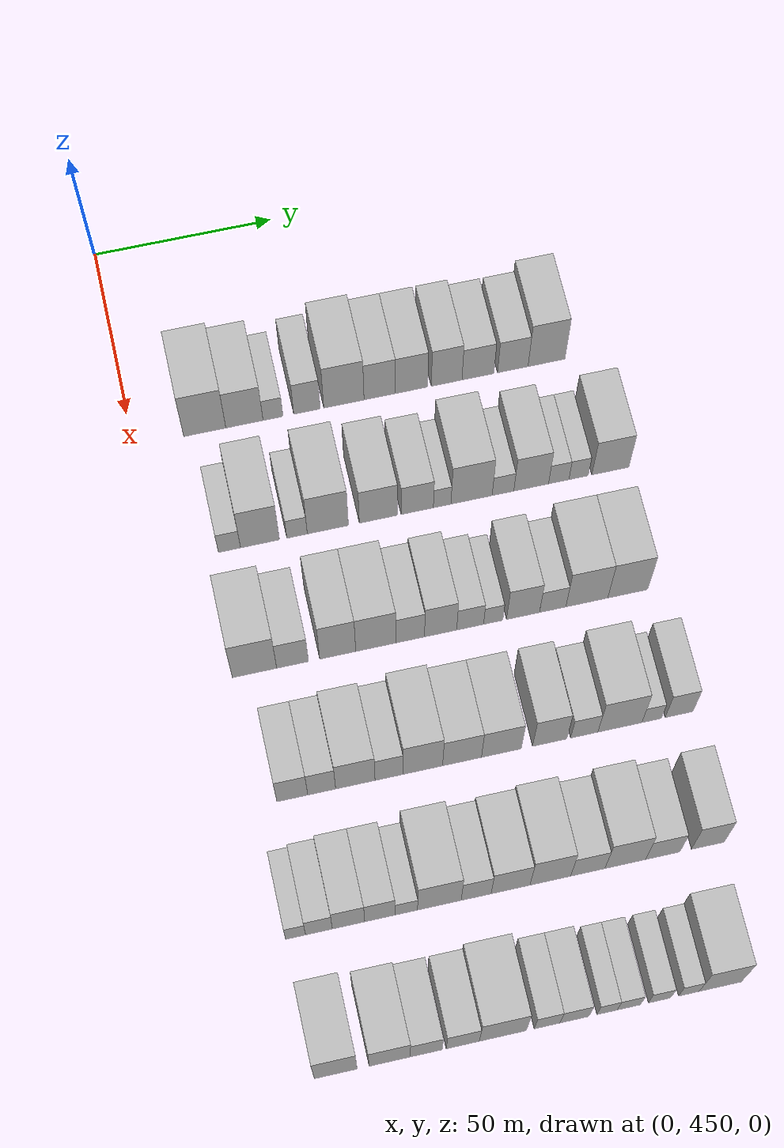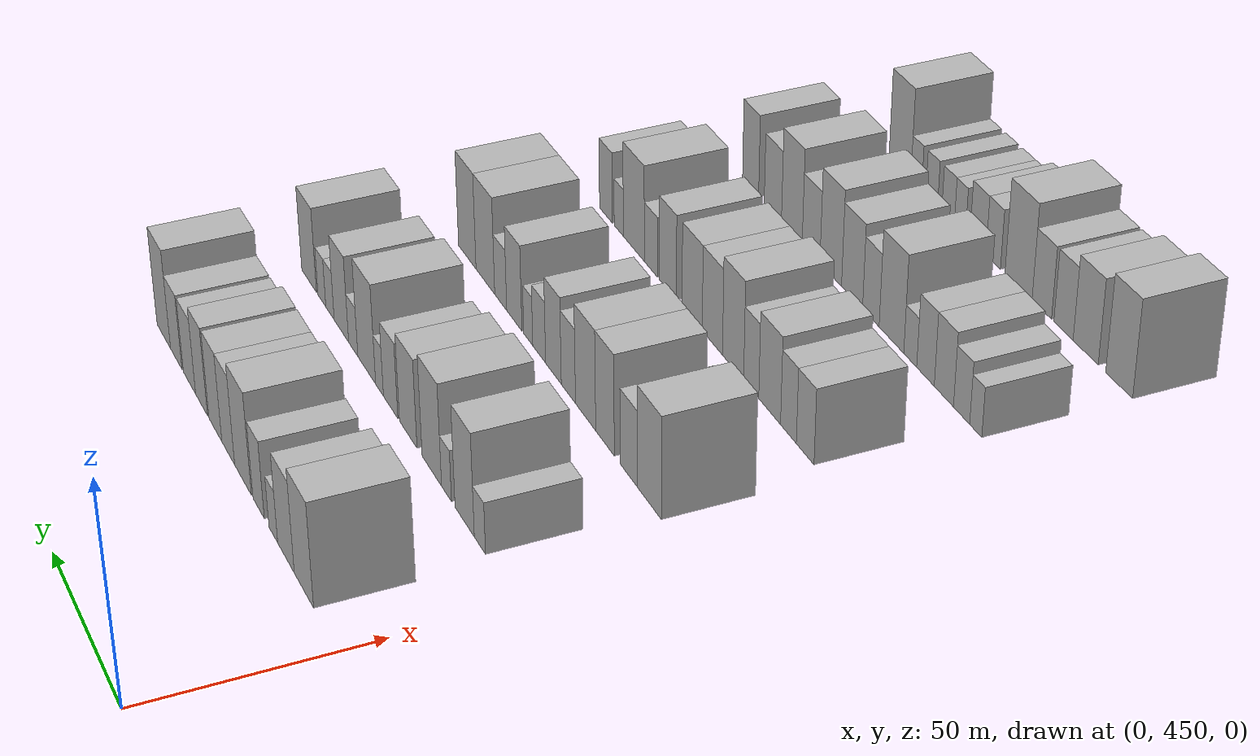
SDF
<sdf version="1.6">
 <world name="default">
  <model name="building_106">
   <static>1</static>
   <pose>50.0000 469.7100 0 0.000000 0.000000 0.000000</pose>
   <link name="link">
    <pose>0 0 12.00 0 0 0</pose>
    <collision name="collision"><geometry><box><size>20.0000 11.6014 24.0000</size></box></geometry></collision>
    <visual name="visual">
     <cast_shadows>0</cast_shadows>
     <geometry><box><size>20.0000 11.6014 24.0000</size></box></geometry>
     <material>
      <script>
       <uri>model://HANNAS_wall/materials/scripts</uri>
       <uri>model://HANNAS_wall/materials/textures</uri>
       <name>vrc/HANNAS_wall</name>
      </script>
     </material>
    </visual>
   </link>
  </model>
  <model name="building_107">
   <static>1</static>
   <pose>50.0000 480.6466 0 0.000000 0.000000 0.000000</pose>
   <link name="link">
    <pose>0 0 10.50 0 0 0</pose>
    <collision name="collision"><geometry><box><size>20.0000 10.2717 21.0000</size></box></geometry></collision>
    <visual name="visual">
     <cast_shadows>0</cast_shadows>
     <geometry><box><size>20.0000 10.2717 21.0000</size></box></geometry>
     <material>
      <script>
       <uri>model://HANNAS_wall/materials/scripts</uri>
       <uri>model://HANNAS_wall/materials/textures</uri>
       <name>vrc/HANNAS_wall</name>
      </script>
     </material>
    </visual>
   </link>
  </model>
  <model name="building_108">
   <static>1</static>
   <pose>50.0000 488.5362 0 0.000000 0.000000 0.000000</pose>
   <link name="link">
    <pose>0 0 6.00 0 0 0</pose>
    <collision name="collision"><geometry><box><size>20.0000 5.5075 12.0000</size></box></geometry></collision>
    <visual name="visual">
     <cast_shadows>0</cast_shadows>
     <geometry><box><size>20.0000 5.5075 12.0000</size></box></geometry>
     <material>
      <script>
       <uri>model://HANNAS_wall/materials/scripts</uri>
       <uri>model://HANNAS_wall/materials/textures</uri>
       <name>vrc/HANNAS_wall</name>
      </script>
     </material>
    </visual>
   </link>
  </model>
  <model name="building_109">
   <static>1</static>
   <pose>50.0000 497.9574 0 0.000000 0.000000 0.000000</pose>
   <link name="link">
    <pose>0 0 9.00 0 0 0</pose>
    <collision name="collision"><geometry><box><size>20.0000 7.3348 18.0000</size></box></geometry></collision>
    <visual name="visual">
     <cast_shadows>0</cast_shadows>
     <geometry><box><size>20.0000 7.3348 18.0000</size></box></geometry>
     <material>
      <script>
       <uri>model://HANNAS_wall/materials/scripts</uri>
       <uri>model://HANNAS_wall/materials/textures</uri>
       <name>vrc/HANNAS_wall</name>
      </script>
     </material>
    </visual>
   </link>
  </model>
  <model name="building_110">
   <static>1</static>
   <pose>50.0000 508.2278 0 0.000000 0.000000 0.000000</pose>
   <link name="link">
    <pose>0 0 12.00 0 0 0</pose>
    <collision name="collision"><geometry><box><size>20.0000 11.2060 24.0000</size></box></geometry></collision>
    <visual name="visual">
     <cast_shadows>0</cast_shadows>
     <geometry><box><size>20.0000 11.2060 24.0000</size></box></geometry>
     <material>
      <script>
       <uri>model://HANNAS_wall/materials/scripts</uri>
       <uri>model://HANNAS_wall/materials/textures</uri>
       <name>vrc/HANNAS_wall</name>
      </script>
     </material>
    </visual>
   </link>
  </model>
  <model name="building_111">
   <static>1</static>
   <pose>50.0000 518.2086 0 0.000000 0.000000 0.000000</pose>
   <link name="link">
    <pose>0 0 10.50 0 0 0</pose>
    <collision name="collision"><geometry><box><size>20.0000 8.7556 21.0000</size></box></geometry></collision>
    <visual name="visual">
     <cast_shadows>0</cast_shadows>
     <geometry><box><size>20.0000 8.7556 21.0000</size></box></geometry>
     <material>
      <script>
       <uri>model://HANNAS_wall/materials/scripts</uri>
       <uri>model://HANNAS_wall/materials/textures</uri>
       <name>vrc/HANNAS_wall</name>
      </script>
     </material>
    </visual>
   </link>
  </model>
  <model name="building_112">
   <static>1</static>
   <pose>50.0000 527.0960 0 0.000000 0.000000 0.000000</pose>
   <link name="link">
    <pose>0 0 10.50 0 0 0</pose>
    <collision name="collision"><geometry><box><size>20.0000 9.0192 21.0000</size></box></geometry></collision>
    <visual name="visual">
     <cast_shadows>0</cast_shadows>
     <geometry><box><size>20.0000 9.0192 21.0000</size></box></geometry>
     <material>
      <script>
       <uri>model://HANNAS_wall/materials/scripts</uri>
       <uri>model://HANNAS_wall/materials/textures</uri>
       <name>vrc/HANNAS_wall</name>
      </script>
     </material>
    </visual>
   </link>
  </model>
  <model name="building_113">
   <static>1</static>
   <pose>50.0000 536.9079 0 0.000000 0.000000 0.000000</pose>
   <link name="link">
    <pose>0 0 10.50 0 0 0</pose>
    <collision name="collision"><geometry><box><size>20.0000 8.6046 21.0000</size></box></geometry></collision>
    <visual name="visual">
     <cast_shadows>0</cast_shadows>
     <geometry><box><size>20.0000 8.6046 21.0000</size></box></geometry>
     <material>
      <script>
       <uri>model://HANNAS_wall/materials/scripts</uri>
       <uri>model://HANNAS_wall/materials/textures</uri>
       <name>vrc/HANNAS_wall</name>
      </script>
     </material>
    </visual>
   </link>
  </model>
  <model name="building_114">
   <static>1</static>
   <pose>50.0000 545.7012 0 0.000000 0.000000 0.000000</pose>
   <link name="link">
    <pose>0 0 9.00 0 0 0</pose>
    <collision name="collision"><geometry><box><size>20.0000 8.9820 18.0000</size></box></geometry></collision>
    <visual name="visual">
     <cast_shadows>0</cast_shadows>
     <geometry><box><size>20.0000 8.9820 18.0000</size></box></geometry>
     <material>
      <script>
       <uri>model://HANNAS_wall/materials/scripts</uri>
       <uri>model://HANNAS_wall/materials/textures</uri>
       <name>vrc/HANNAS_wall</name>
      </script>
     </material>
    </visual>
   </link>
  </model>
  <model name="building_115">
   <static>1</static>
   <pose>50.0000 555.4926 0 0.000000 0.000000 0.000000</pose>
   <link name="link">
    <pose>0 0 9.00 0 0 0</pose>
    <collision name="collision"><geometry><box><size>20.0000 8.6007 18.0000</size></box></geometry></collision>
    <visual name="visual">
     <cast_shadows>0</cast_shadows>
     <geometry><box><size>20.0000 8.6007 18.0000</size></box></geometry>
     <material>
      <script>
       <uri>model://HANNAS_wall/materials/scripts</uri>
       <uri>model://HANNAS_wall/materials/textures</uri>
       <name>vrc/HANNAS_wall</name>
      </script>
     </material>
    </visual>
   </link>
  </model>
  <model name="building_116">
   <static>1</static>
   <pose>50.0000 564.9871 0 0.000000 0.000000 0.000000</pose>
   <link name="link">
    <pose>0 0 12.00 0 0 0</pose>
    <collision name="collision"><geometry><box><size>20.0000 10.3883 24.0000</size></box></geometry></collision>
    <visual name="visual">
     <cast_shadows>0</cast_shadows>
     <geometry><box><size>20.0000 10.3883 24.0000</size></box></geometry>
     <material>
      <script>
       <uri>model://HANNAS_wall/materials/scripts</uri>
       <uri>model://HANNAS_wall/materials/textures</uri>
       <name>vrc/HANNAS_wall</name>
      </script>
     </material>
    </visual>
   </link>
  </model>
  <model name="building_226">
   <static>1</static>
   <pose>85.0000 469.6492 0 0.000000 0.000000 0.000000</pose>
   <link name="link">
    <pose>0 0 6.00 0 0 0</pose>
    <collision name="collision"><geometry><box><size>20.0000 5.9895 12.0000</size></box></geometry></collision>
    <visual name="visual">
     <cast_shadows>0</cast_shadows>
     <geometry><box><size>20.0000 5.9895 12.0000</size></box></geometry>
     <material>
      <script>
       <uri>model://HANNAS_wall/materials/scripts</uri>
       <uri>model://HANNAS_wall/materials/textures</uri>
       <name>vrc/HANNAS_wall</name>
      </script>
     </material>
    </visual>
   </link>
  </model>
  <model name="building_227">
   <static>1</static>
   <pose>85.0000 477.9140 0 0.000000 0.000000 0.000000</pose>
   <link name="link">
    <pose>0 0 12.00 0 0 0</pose>
    <collision name="collision"><geometry><box><size>20.0000 10.5402 24.0000</size></box></geometry></collision>
    <visual name="visual">
     <cast_shadows>0</cast_shadows>
     <geometry><box><size>20.0000 10.5402 24.0000</size></box></geometry>
     <material>
      <script>
       <uri>model://HANNAS_wall/materials/scripts</uri>
       <uri>model://HANNAS_wall/materials/textures</uri>
       <name>vrc/HANNAS_wall</name>
      </script>
     </material>
    </visual>
   </link>
  </model>
  <model name="building_228">
   <static>1</static>
   <pose>85.0000 487.9640 0 0.000000 0.000000 0.000000</pose>
   <link name="link">
    <pose>0 0 6.00 0 0 0</pose>
    <collision name="collision"><geometry><box><size>20.0000 5.5598 12.0000</size></box></geometry></collision>
    <visual name="visual">
     <cast_shadows>0</cast_shadows>
     <geometry><box><size>20.0000 5.5598 12.0000</size></box></geometry>
     <material>
      <script>
       <uri>model://HANNAS_wall/materials/scripts</uri>
       <uri>model://HANNAS_wall/materials/textures</uri>
       <name>vrc/HANNAS_wall</name>
      </script>
     </material>
    </visual>
   </link>
  </model>
  <model name="building_229">
   <static>1</static>
   <pose>85.0000 496.3328 0 0.000000 0.000000 0.000000</pose>
   <link name="link">
    <pose>0 0 12.00 0 0 0</pose>
    <collision name="collision"><geometry><box><size>20.0000 11.1779 24.0000</size></box></geometry></collision>
    <visual name="visual">
     <cast_shadows>0</cast_shadows>
     <geometry><box><size>20.0000 11.1779 24.0000</size></box></geometry>
     <material>
      <script>
       <uri>model://HANNAS_wall/materials/scripts</uri>
       <uri>model://HANNAS_wall/materials/textures</uri>
       <name>vrc/HANNAS_wall</name>
      </script>
     </material>
    </visual>
   </link>
  </model>
  <model name="building_230">
   <static>1</static>
   <pose>85.0000 510.1281 0 0.000000 0.000000 0.000000</pose>
   <link name="link">
    <pose>0 0 10.50 0 0 0</pose>
    <collision name="collision"><geometry><box><size>20.0000 10.4126 21.0000</size></box></geometry></collision>
    <visual name="visual">
     <cast_shadows>0</cast_shadows>
     <geometry><box><size>20.0000 10.4126 21.0000</size></box></geometry>
     <material>
      <script>
       <uri>model://HANNAS_wall/materials/scripts</uri>
       <uri>model://HANNAS_wall/materials/textures</uri>
       <name>vrc/HANNAS_wall</name>
      </script>
     </material>
    </visual>
   </link>
  </model>
  <model name="building_231">
   <static>1</static>
   <pose>85.0000 520.7489 0 0.000000 0.000000 0.000000</pose>
   <link name="link">
    <pose>0 0 9.00 0 0 0</pose>
    <collision name="collision"><geometry><box><size>20.0000 8.8291 18.0000</size></box></geometry></collision>
    <visual name="visual">
     <cast_shadows>0</cast_shadows>
     <geometry><box><size>20.0000 8.8291 18.0000</size></box></geometry>
     <material>
      <script>
       <uri>model://HANNAS_wall/materials/scripts</uri>
       <uri>model://HANNAS_wall/materials/textures</uri>
       <name>vrc/HANNAS_wall</name>
      </script>
     </material>
    </visual>
   </link>
  </model>
  <model name="building_232">
   <static>1</static>
   <pose>85.0000 527.5723 0 0.000000 0.000000 0.000000</pose>
   <link name="link">
    <pose>0 0 6.00 0 0 0</pose>
    <collision name="collision"><geometry><box><size>20.0000 4.8176 12.0000</size></box></geometry></collision>
    <visual name="visual">
     <cast_shadows>0</cast_shadows>
     <geometry><box><size>20.0000 4.8176 12.0000</size></box></geometry>
     <material>
      <script>
       <uri>model://HANNAS_wall/materials/scripts</uri>
       <uri>model://HANNAS_wall/materials/textures</uri>
       <name>vrc/HANNAS_wall</name>
      </script>
     </material>
    </visual>
   </link>
  </model>
  <model name="building_233">
   <static>1</static>
   <pose>85.0000 535.6492 0 0.000000 0.000000 0.000000</pose>
   <link name="link">
    <pose>0 0 12.00 0 0 0</pose>
    <collision name="collision"><geometry><box><size>20.0000 11.3363 24.0000</size></box></geometry></collision>
    <visual name="visual">
     <cast_shadows>0</cast_shadows>
     <geometry><box><size>20.0000 11.3363 24.0000</size></box></geometry>
     <material>
      <script>
       <uri>model://HANNAS_wall/materials/scripts</uri>
       <uri>model://HANNAS_wall/materials/textures</uri>
       <name>vrc/HANNAS_wall</name>
      </script>
     </material>
    </visual>
   </link>
  </model>
  <model name="building_234">
   <static>1</static>
   <pose>85.0000 544.3061 0 0.000000 0.000000 0.000000</pose>
   <link name="link">
    <pose>0 0 6.00 0 0 0</pose>
    <collision name="collision"><geometry><box><size>20.0000 5.9774 12.0000</size></box></geometry></collision>
    <visual name="visual">
     <cast_shadows>0</cast_shadows>
     <geometry><box><size>20.0000 5.9774 12.0000</size></box></geometry>
     <material>
      <script>
       <uri>model://HANNAS_wall/materials/scripts</uri>
       <uri>model://HANNAS_wall/materials/textures</uri>
       <name>vrc/HANNAS_wall</name>
      </script>
     </material>
    </visual>
   </link>
  </model>
  <model name="building_235">
   <static>1</static>
   <pose>85.0000 552.0830 0 0.000000 0.000000 0.000000</pose>
   <link name="link">
    <pose>0 0 10.50 0 0 0</pose>
    <collision name="collision"><geometry><box><size>20.0000 9.5765 21.0000</size></box></geometry></collision>
    <visual name="visual">
     <cast_shadows>0</cast_shadows>
     <geometry><box><size>20.0000 9.5765 21.0000</size></box></geometry>
     <material>
      <script>
       <uri>model://HANNAS_wall/materials/scripts</uri>
       <uri>model://HANNAS_wall/materials/textures</uri>
       <name>vrc/HANNAS_wall</name>
      </script>
     </material>
    </visual>
   </link>
  </model>
  <model name="building_236">
   <static>1</static>
   <pose>85.0000 559.6921 0 0.000000 0.000000 0.000000</pose>
   <link name="link">
    <pose>0 0 6.00 0 0 0</pose>
    <collision name="collision"><geometry><box><size>20.0000 5.6416 12.0000</size></box></geometry></collision>
    <visual name="visual">
     <cast_shadows>0</cast_shadows>
     <geometry><box><size>20.0000 5.6416 12.0000</size></box></geometry>
     <material>
      <script>
       <uri>model://HANNAS_wall/materials/scripts</uri>
       <uri>model://HANNAS_wall/materials/textures</uri>
       <name>vrc/HANNAS_wall</name>
      </script>
     </material>
    </visual>
   </link>
  </model>
  <model name="building_237">
   <static>1</static>
   <pose>85.0000 565.1885 0 0.000000 0.000000 0.000000</pose>
   <link name="link">
    <pose>0 0 6.00 0 0 0</pose>
    <collision name="collision"><geometry><box><size>20.0000 5.3513 12.0000</size></box></geometry></collision>
    <visual name="visual">
     <cast_shadows>0</cast_shadows>
     <geometry><box><size>20.0000 5.3513 12.0000</size></box></geometry>
     <material>
      <script>
       <uri>model://HANNAS_wall/materials/scripts</uri>
       <uri>model://HANNAS_wall/materials/textures</uri>
       <name>vrc/HANNAS_wall</name>
      </script>
     </material>
    </visual>
   </link>
  </model>
  <model name="building_238">
   <static>1</static>
   <pose>85.0000 574.0021 0 0.000000 0.000000 0.000000</pose>
   <link name="link">
    <pose>0 0 10.50 0 0 0</pose>
    <collision name="collision"><geometry><box><size>20.0000 10.2759 21.0000</size></box></geometry></collision>
    <visual name="visual">
     <cast_shadows>0</cast_shadows>
     <geometry><box><size>20.0000 10.2759 21.0000</size></box></geometry>
     <material>
      <script>
       <uri>model://HANNAS_wall/materials/scripts</uri>
       <uri>model://HANNAS_wall/materials/textures</uri>
       <name>vrc/HANNAS_wall</name>
      </script>
     </material>
    </visual>
   </link>
  </model>
  <model name="building_348">
   <static>1</static>
   <pose>120.0000 469.4307 0 0.000000 0.000000 0.000000</pose>
   <link name="link">
    <pose>0 0 12.00 0 0 0</pose>
    <collision name="collision"><geometry><box><size>20.0000 11.7761 24.0000</size></box></geometry></collision>
    <visual name="visual">
     <cast_shadows>0</cast_shadows>
     <geometry><box><size>20.0000 11.7761 24.0000</size></box></geometry>
     <material>
      <script>
       <uri>model://HANNAS_wall/materials/scripts</uri>
       <uri>model://HANNAS_wall/materials/textures</uri>
       <name>vrc/HANNAS_wall</name>
      </script>
     </material>
    </visual>
   </link>
  </model>
  <model name="building_349">
   <static>1</static>
   <pose>120.0000 479.5375 0 0.000000 0.000000 0.000000</pose>
   <link name="link">
    <pose>0 0 9.00 0 0 0</pose>
    <collision name="collision"><geometry><box><size>20.0000 8.4376 18.0000</size></box></geometry></collision>
    <visual name="visual">
     <cast_shadows>0</cast_shadows>
     <geometry><box><size>20.0000 8.4376 18.0000</size></box></geometry>
     <material>
      <script>
       <uri>model://HANNAS_wall/materials/scripts</uri>
       <uri>model://HANNAS_wall/materials/textures</uri>
       <name>vrc/HANNAS_wall</name>
      </script>
     </material>
    </visual>
   </link>
  </model>
  <model name="building_350">
   <static>1</static>
   <pose>120.0000 491.5591 0 0.000000 0.000000 0.000000</pose>
   <link name="link">
    <pose>0 0 12.00 0 0 0</pose>
    <collision name="collision"><geometry><box><size>20.0000 9.6054 24.0000</size></box></geometry></collision>
    <visual name="visual">
     <cast_shadows>0</cast_shadows>
     <geometry><box><size>20.0000 9.6054 24.0000</size></box></geometry>
     <material>
      <script>
       <uri>model://HANNAS_wall/materials/scripts</uri>
       <uri>model://HANNAS_wall/materials/textures</uri>
       <name>vrc/HANNAS_wall</name>
      </script>
     </material>
    </visual>
   </link>
  </model>
  <model name="building_351">
   <static>1</static>
   <pose>120.0000 501.7022 0 0.000000 0.000000 0.000000</pose>
   <link name="link">
    <pose>0 0 12.00 0 0 0</pose>
    <collision name="collision"><geometry><box><size>20.0000 10.6809 24.0000</size></box></geometry></collision>
    <visual name="visual">
     <cast_shadows>0</cast_shadows>
     <geometry><box><size>20.0000 10.6809 24.0000</size></box></geometry>
     <material>
      <script>
       <uri>model://HANNAS_wall/materials/scripts</uri>
       <uri>model://HANNAS_wall/materials/textures</uri>
       <name>vrc/HANNAS_wall</name>
      </script>
     </material>
    </visual>
   </link>
  </model>
  <model name="building_352">
   <static>1</static>
   <pose>120.0000 510.8891 0 0.000000 0.000000 0.000000</pose>
   <link name="link">
    <pose>0 0 9.00 0 0 0</pose>
    <collision name="collision"><geometry><box><size>20.0000 7.6928 18.0000</size></box></geometry></collision>
    <visual name="visual">
     <cast_shadows>0</cast_shadows>
     <geometry><box><size>20.0000 7.6928 18.0000</size></box></geometry>
     <material>
      <script>
       <uri>model://HANNAS_wall/materials/scripts</uri>
       <uri>model://HANNAS_wall/materials/textures</uri>
       <name>vrc/HANNAS_wall</name>
      </script>
     </material>
    </visual>
   </link>
  </model>
  <model name="building_353">
   <static>1</static>
   <pose>120.0000 519.0632 0 0.000000 0.000000 0.000000</pose>
   <link name="link">
    <pose>0 0 10.50 0 0 0</pose>
    <collision name="collision"><geometry><box><size>20.0000 8.6554 21.0000</size></box></geometry></collision>
    <visual name="visual">
     <cast_shadows>0</cast_shadows>
     <geometry><box><size>20.0000 8.6554 21.0000</size></box></geometry>
     <material>
      <script>
       <uri>model://HANNAS_wall/materials/scripts</uri>
       <uri>model://HANNAS_wall/materials/textures</uri>
       <name>vrc/HANNAS_wall</name>
      </script>
     </material>
    </visual>
   </link>
  </model>
  <model name="building_354">
   <static>1</static>
   <pose>120.0000 527.0160 0 0.000000 0.000000 0.000000</pose>
   <link name="link">
    <pose>0 0 7.50 0 0 0</pose>
    <collision name="collision"><geometry><box><size>20.0000 7.2502 15.0000</size></box></geometry></collision>
    <visual name="visual">
     <cast_shadows>0</cast_shadows>
     <geometry><box><size>20.0000 7.2502 15.0000</size></box></geometry>
     <material>
      <script>
       <uri>model://HANNAS_wall/materials/scripts</uri>
       <uri>model://HANNAS_wall/materials/textures</uri>
       <name>vrc/HANNAS_wall</name>
      </script>
     </material>
    </visual>
   </link>
  </model>
  <model name="building_355">
   <static>1</static>
   <pose>120.0000 533.2361 0 0.000000 0.000000 0.000000</pose>
   <link name="link">
    <pose>0 0 6.00 0 0 0</pose>
    <collision name="collision"><geometry><box><size>20.0000 5.1900 12.0000</size></box></geometry></collision>
    <visual name="visual">
     <cast_shadows>0</cast_shadows>
     <geometry><box><size>20.0000 5.1900 12.0000</size></box></geometry>
     <material>
      <script>
       <uri>model://HANNAS_wall/materials/scripts</uri>
       <uri>model://HANNAS_wall/materials/textures</uri>
       <name>vrc/HANNAS_wall</name>
      </script>
     </material>
    </visual>
   </link>
  </model>
  <model name="building_356">
   <static>1</static>
   <pose>120.0000 541.2809 0 0.000000 0.000000 0.000000</pose>
   <link name="link">
    <pose>0 0 10.50 0 0 0</pose>
    <collision name="collision"><geometry><box><size>20.0000 8.8995 21.0000</size></box></geometry></collision>
    <visual name="visual">
     <cast_shadows>0</cast_shadows>
     <geometry><box><size>20.0000 8.8995 21.0000</size></box></geometry>
     <material>
      <script>
       <uri>model://HANNAS_wall/materials/scripts</uri>
       <uri>model://HANNAS_wall/materials/textures</uri>
       <name>vrc/HANNAS_wall</name>
      </script>
     </material>
    </visual>
   </link>
  </model>
  <model name="building_357">
   <static>1</static>
   <pose>120.0000 549.3028 0 0.000000 0.000000 0.000000</pose>
   <link name="link">
    <pose>0 0 7.50 0 0 0</pose>
    <collision name="collision"><geometry><box><size>20.0000 7.1442 15.0000</size></box></geometry></collision>
    <visual name="visual">
     <cast_shadows>0</cast_shadows>
     <geometry><box><size>20.0000 7.1442 15.0000</size></box></geometry>
     <material>
      <script>
       <uri>model://HANNAS_wall/materials/scripts</uri>
       <uri>model://HANNAS_wall/materials/textures</uri>
       <name>vrc/HANNAS_wall</name>
      </script>
     </material>
    </visual>
   </link>
  </model>
  <model name="building_358">
   <static>1</static>
   <pose>120.0000 558.5665 0 0.000000 0.000000 0.000000</pose>
   <link name="link">
    <pose>0 0 12.00 0 0 0</pose>
    <collision name="collision"><geometry><box><size>20.0000 11.3832 24.0000</size></box></geometry></collision>
    <visual name="visual">
     <cast_shadows>0</cast_shadows>
     <geometry><box><size>20.0000 11.3832 24.0000</size></box></geometry>
     <material>
      <script>
       <uri>model://HANNAS_wall/materials/scripts</uri>
       <uri>model://HANNAS_wall/materials/textures</uri>
       <name>vrc/HANNAS_wall</name>
      </script>
     </material>
    </visual>
   </link>
  </model>
  <model name="building_359">
   <static>1</static>
   <pose>120.0000 569.6889 0 0.000000 0.000000 0.000000</pose>
   <link name="link">
    <pose>0 0 12.00 0 0 0</pose>
    <collision name="collision"><geometry><box><size>20.0000 10.8616 24.0000</size></box></geometry></collision>
    <visual name="visual">
     <cast_shadows>0</cast_shadows>
     <geometry><box><size>20.0000 10.8616 24.0000</size></box></geometry>
     <material>
      <script>
       <uri>model://HANNAS_wall/materials/scripts</uri>
       <uri>model://HANNAS_wall/materials/textures</uri>
       <name>vrc/HANNAS_wall</name>
      </script>
     </material>
    </visual>
   </link>
  </model>
  <model name="building_472">
   <static>1</static>
   <pose>155.0000 472.2458 0 0.000000 0.000000 0.000000</pose>
   <link name="link">
    <pose>0 0 9.00 0 0 0</pose>
    <collision name="collision"><geometry><box><size>20.0000 8.0115 18.0000</size></box></geometry></collision>
    <visual name="visual">
     <cast_shadows>0</cast_shadows>
     <geometry><box><size>20.0000 8.0115 18.0000</size></box></geometry>
     <material>
      <script>
       <uri>model://HANNAS_wall/materials/scripts</uri>
       <uri>model://HANNAS_wall/materials/textures</uri>
       <name>vrc/HANNAS_wall</name>
      </script>
     </material>
    </visual>
   </link>
  </model>
  <model name="building_473">
   <static>1</static>
   <pose>155.0000 479.8891 0 0.000000 0.000000 0.000000</pose>
   <link name="link">
    <pose>0 0 9.00 0 0 0</pose>
    <collision name="collision"><geometry><box><size>20.0000 7.2750 18.0000</size></box></geometry></collision>
    <visual name="visual">
     <cast_shadows>0</cast_shadows>
     <geometry><box><size>20.0000 7.2750 18.0000</size></box></geometry>
     <material>
      <script>
       <uri>model://HANNAS_wall/materials/scripts</uri>
       <uri>model://HANNAS_wall/materials/textures</uri>
       <name>vrc/HANNAS_wall</name>
      </script>
     </material>
    </visual>
   </link>
  </model>
  <model name="building_474">
   <static>1</static>
   <pose>155.0000 488.6680 0 0.000000 0.000000 0.000000</pose>
   <link name="link">
    <pose>0 0 10.50 0 0 0</pose>
    <collision name="collision"><geometry><box><size>20.0000 10.2828 21.0000</size></box></geometry></collision>
    <visual name="visual">
     <cast_shadows>0</cast_shadows>
     <geometry><box><size>20.0000 10.2828 21.0000</size></box></geometry>
     <material>
      <script>
       <uri>model://HANNAS_wall/materials/scripts</uri>
       <uri>model://HANNAS_wall/materials/textures</uri>
       <name>vrc/HANNAS_wall</name>
      </script>
     </material>
    </visual>
   </link>
  </model>
  <model name="building_475">
   <static>1</static>
   <pose>155.0000 497.4540 0 0.000000 0.000000 0.000000</pose>
   <link name="link">
    <pose>0 0 9.00 0 0 0</pose>
    <collision name="collision"><geometry><box><size>20.0000 7.2894 18.0000</size></box></geometry></collision>
    <visual name="visual">
     <cast_shadows>0</cast_shadows>
     <geometry><box><size>20.0000 7.2894 18.0000</size></box></geometry>
     <material>
      <script>
       <uri>model://HANNAS_wall/materials/scripts</uri>
       <uri>model://HANNAS_wall/materials/textures</uri>
       <name>vrc/HANNAS_wall</name>
      </script>
     </material>
    </visual>
   </link>
  </model>
  <model name="building_476">
   <static>1</static>
   <pose>155.0000 506.3157 0 0.000000 0.000000 0.000000</pose>
   <link name="link">
    <pose>0 0 12.00 0 0 0</pose>
    <collision name="collision"><geometry><box><size>20.0000 10.4339 24.0000</size></box></geometry></collision>
    <visual name="visual">
     <cast_shadows>0</cast_shadows>
     <geometry><box><size>20.0000 10.4339 24.0000</size></box></geometry>
     <material>
      <script>
       <uri>model://HANNAS_wall/materials/scripts</uri>
       <uri>model://HANNAS_wall/materials/textures</uri>
       <name>vrc/HANNAS_wall</name>
      </script>
     </material>
    </visual>
   </link>
  </model>
  <model name="building_477">
   <static>1</static>
   <pose>155.0000 516.6469 0 0.000000 0.000000 0.000000</pose>
   <link name="link">
    <pose>0 0 10.50 0 0 0</pose>
    <collision name="collision"><geometry><box><size>20.0000 10.2285 21.0000</size></box></geometry></collision>
    <visual name="visual">
     <cast_shadows>0</cast_shadows>
     <geometry><box><size>20.0000 10.2285 21.0000</size></box></geometry>
     <material>
      <script>
       <uri>model://HANNAS_wall/materials/scripts</uri>
       <uri>model://HANNAS_wall/materials/textures</uri>
       <name>vrc/HANNAS_wall</name>
      </script>
     </material>
    </visual>
   </link>
  </model>
  <model name="building_478">
   <static>1</static>
   <pose>155.0000 527.0110 0 0.000000 0.000000 0.000000</pose>
   <link name="link">
    <pose>0 0 10.50 0 0 0</pose>
    <collision name="collision"><geometry><box><size>20.0000 10.4998 21.0000</size></box></geometry></collision>
    <visual name="visual">
     <cast_shadows>0</cast_shadows>
     <geometry><box><size>20.0000 10.4998 21.0000</size></box></geometry>
     <material>
      <script>
       <uri>model://HANNAS_wall/materials/scripts</uri>
       <uri>model://HANNAS_wall/materials/textures</uri>
       <name>vrc/HANNAS_wall</name>
      </script>
     </material>
    </visual>
   </link>
  </model>
  <model name="building_479">
   <static>1</static>
   <pose>155.0000 539.7987 0 0.000000 0.000000 0.000000</pose>
   <link name="link">
    <pose>0 0 10.50 0 0 0</pose>
    <collision name="collision"><geometry><box><size>20.0000 9.0755 21.0000</size></box></geometry></collision>
    <visual name="visual">
     <cast_shadows>0</cast_shadows>
     <geometry><box><size>20.0000 9.0755 21.0000</size></box></geometry>
     <material>
      <script>
       <uri>model://HANNAS_wall/materials/scripts</uri>
       <uri>model://HANNAS_wall/materials/textures</uri>
       <name>vrc/HANNAS_wall</name>
      </script>
     </material>
    </visual>
   </link>
  </model>
  <model name="building_480">
   <static>1</static>
   <pose>155.0000 548.9595 0 0.000000 0.000000 0.000000</pose>
   <link name="link">
    <pose>0 0 7.50 0 0 0</pose>
    <collision name="collision"><geometry><box><size>20.0000 7.2463 15.0000</size></box></geometry></collision>
    <visual name="visual">
     <cast_shadows>0</cast_shadows>
     <geometry><box><size>20.0000 7.2463 15.0000</size></box></geometry>
     <material>
      <script>
       <uri>model://HANNAS_wall/materials/scripts</uri>
       <uri>model://HANNAS_wall/materials/textures</uri>
       <name>vrc/HANNAS_wall</name>
      </script>
     </material>
    </visual>
   </link>
  </model>
  <model name="building_481">
   <static>1</static>
   <pose>155.0000 558.4377 0 0.000000 0.000000 0.000000</pose>
   <link name="link">
    <pose>0 0 12.00 0 0 0</pose>
    <collision name="collision"><geometry><box><size>20.0000 11.7102 24.0000</size></box></geometry></collision>
    <visual name="visual">
     <cast_shadows>0</cast_shadows>
     <geometry><box><size>20.0000 11.7102 24.0000</size></box></geometry>
     <material>
      <script>
       <uri>model://HANNAS_wall/materials/scripts</uri>
       <uri>model://HANNAS_wall/materials/textures</uri>
       <name>vrc/HANNAS_wall</name>
      </script>
     </material>
    </visual>
   </link>
  </model>
  <model name="building_482">
   <static>1</static>
   <pose>155.0000 566.9035 0 0.000000 0.000000 0.000000</pose>
   <link name="link">
    <pose>0 0 6.00 0 0 0</pose>
    <collision name="collision"><geometry><box><size>20.0000 5.2215 12.0000</size></box></geometry></collision>
    <visual name="visual">
     <cast_shadows>0</cast_shadows>
     <geometry><box><size>20.0000 5.2215 12.0000</size></box></geometry>
     <material>
      <script>
       <uri>model://HANNAS_wall/materials/scripts</uri>
       <uri>model://HANNAS_wall/materials/textures</uri>
       <name>vrc/HANNAS_wall</name>
      </script>
     </material>
    </visual>
   </link>
  </model>
  <model name="building_483">
   <static>1</static>
   <pose>155.0000 574.2323 0 0.000000 0.000000 0.000000</pose>
   <link name="link">
    <pose>0 0 9.00 0 0 0</pose>
    <collision name="collision"><geometry><box><size>20.0000 7.4361 18.0000</size></box></geometry></collision>
    <visual name="visual">
     <cast_shadows>0</cast_shadows>
     <geometry><box><size>20.0000 7.4361 18.0000</size></box></geometry>
     <material>
      <script>
       <uri>model://HANNAS_wall/materials/scripts</uri>
       <uri>model://HANNAS_wall/materials/textures</uri>
       <name>vrc/HANNAS_wall</name>
      </script>
     </material>
    </visual>
   </link>
  </model>
  <model name="building_599">
   <static>1</static>
   <pose>190.0000 465.8718 0 0.000000 0.000000 0.000000</pose>
   <link name="link">
    <pose>0 0 6.00 0 0 0</pose>
    <collision name="collision"><geometry><box><size>20.0000 5.0591 12.0000</size></box></geometry></collision>
    <visual name="visual">
     <cast_shadows>0</cast_shadows>
     <geometry><box><size>20.0000 5.0591 12.0000</size></box></geometry>
     <material>
      <script>
       <uri>model://HANNAS_wall/materials/scripts</uri>
       <uri>model://HANNAS_wall/materials/textures</uri>
       <name>vrc/HANNAS_wall</name>
      </script>
     </material>
    </visual>
   </link>
  </model>
  <model name="building_600">
   <static>1</static>
   <pose>190.0000 471.8143 0 0.000000 0.000000 0.000000</pose>
   <link name="link">
    <pose>0 0 7.50 0 0 0</pose>
    <collision name="collision"><geometry><box><size>20.0000 6.8260 15.0000</size></box></geometry></collision>
    <visual name="visual">
     <cast_shadows>0</cast_shadows>
     <geometry><box><size>20.0000 6.8260 15.0000</size></box></geometry>
     <material>
      <script>
       <uri>model://HANNAS_wall/materials/scripts</uri>
       <uri>model://HANNAS_wall/materials/textures</uri>
       <name>vrc/HANNAS_wall</name>
      </script>
     </material>
    </visual>
   </link>
  </model>
  <model name="building_601">
   <static>1</static>
   <pose>190.0000 479.3616 0 0.000000 0.000000 0.000000</pose>
   <link name="link">
    <pose>0 0 9.00 0 0 0</pose>
    <collision name="collision"><geometry><box><size>20.0000 8.2686 18.0000</size></box></geometry></collision>
    <visual name="visual">
     <cast_shadows>0</cast_shadows>
     <geometry><box><size>20.0000 8.2686 18.0000</size></box></geometry>
     <material>
      <script>
       <uri>model://HANNAS_wall/materials/scripts</uri>
       <uri>model://HANNAS_wall/materials/textures</uri>
       <name>vrc/HANNAS_wall</name>
      </script>
     </material>
    </visual>
   </link>
  </model>
  <model name="building_602">
   <static>1</static>
   <pose>190.0000 487.3592 0 0.000000 0.000000 0.000000</pose>
   <link name="link">
    <pose>0 0 9.00 0 0 0</pose>
    <collision name="collision"><geometry><box><size>20.0000 7.7267 18.0000</size></box></geometry></collision>
    <visual name="visual">
     <cast_shadows>0</cast_shadows>
     <geometry><box><size>20.0000 7.7267 18.0000</size></box></geometry>
     <material>
      <script>
       <uri>model://HANNAS_wall/materials/scripts</uri>
       <uri>model://HANNAS_wall/materials/textures</uri>
       <name>vrc/HANNAS_wall</name>
      </script>
     </material>
    </visual>
   </link>
  </model>
  <model name="building_603">
   <static>1</static>
   <pose>190.0000 494.1106 0 0.000000 0.000000 0.000000</pose>
   <link name="link">
    <pose>0 0 6.00 0 0 0</pose>
    <collision name="collision"><geometry><box><size>20.0000 5.7759 12.0000</size></box></geometry></collision>
    <visual name="visual">
     <cast_shadows>0</cast_shadows>
     <geometry><box><size>20.0000 5.7759 12.0000</size></box></geometry>
     <material>
      <script>
       <uri>model://HANNAS_wall/materials/scripts</uri>
       <uri>model://HANNAS_wall/materials/textures</uri>
       <name>vrc/HANNAS_wall</name>
      </script>
     </material>
    </visual>
   </link>
  </model>
  <model name="building_604">
   <static>1</static>
   <pose>190.0000 502.6145 0 0.000000 0.000000 0.000000</pose>
   <link name="link">
    <pose>0 0 12.00 0 0 0</pose>
    <collision name="collision"><geometry><box><size>20.0000 11.2320 24.0000</size></box></geometry></collision>
    <visual name="visual">
     <cast_shadows>0</cast_shadows>
     <geometry><box><size>20.0000 11.2320 24.0000</size></box></geometry>
     <material>
      <script>
       <uri>model://HANNAS_wall/materials/scripts</uri>
       <uri>model://HANNAS_wall/materials/textures</uri>
       <name>vrc/HANNAS_wall</name>
      </script>
     </material>
    </visual>
   </link>
  </model>
  <model name="building_605">
   <static>1</static>
   <pose>190.0000 512.0905 0 0.000000 0.000000 0.000000</pose>
   <link name="link">
    <pose>0 0 9.00 0 0 0</pose>
    <collision name="collision"><geometry><box><size>20.0000 7.7200 18.0000</size></box></geometry></collision>
    <visual name="visual">
     <cast_shadows>0</cast_shadows>
     <geometry><box><size>20.0000 7.7200 18.0000</size></box></geometry>
     <material>
      <script>
       <uri>model://HANNAS_wall/materials/scripts</uri>
       <uri>model://HANNAS_wall/materials/textures</uri>
       <name>vrc/HANNAS_wall</name>
      </script>
     </material>
    </visual>
   </link>
  </model>
  <model name="building_606">
   <static>1</static>
   <pose>190.0000 520.9630 0 0.000000 0.000000 0.000000</pose>
   <link name="link">
    <pose>0 0 10.50 0 0 0</pose>
    <collision name="collision"><geometry><box><size>20.0000 10.0249 21.0000</size></box></geometry></collision>
    <visual name="visual">
     <cast_shadows>0</cast_shadows>
     <geometry><box><size>20.0000 10.0249 21.0000</size></box></geometry>
     <material>
      <script>
       <uri>model://HANNAS_wall/materials/scripts</uri>
       <uri>model://HANNAS_wall/materials/textures</uri>
       <name>vrc/HANNAS_wall</name>
      </script>
     </material>
    </visual>
   </link>
  </model>
  <model name="building_607">
   <static>1</static>
   <pose>190.0000 531.2566 0 0.000000 0.000000 0.000000</pose>
   <link name="link">
    <pose>0 0 12.00 0 0 0</pose>
    <collision name="collision"><geometry><box><size>20.0000 10.5622 24.0000</size></box></geometry></collision>
    <visual name="visual">
     <cast_shadows>0</cast_shadows>
     <geometry><box><size>20.0000 10.5622 24.0000</size></box></geometry>
     <material>
      <script>
       <uri>model://HANNAS_wall/materials/scripts</uri>
       <uri>model://HANNAS_wall/materials/textures</uri>
       <name>vrc/HANNAS_wall</name>
      </script>
     </material>
    </visual>
   </link>
  </model>
  <model name="building_608">
   <static>1</static>
   <pose>190.0000 540.9764 0 0.000000 0.000000 0.000000</pose>
   <link name="link">
    <pose>0 0 9.00 0 0 0</pose>
    <collision name="collision"><geometry><box><size>20.0000 8.8775 18.0000</size></box></geometry></collision>
    <visual name="visual">
     <cast_shadows>0</cast_shadows>
     <geometry><box><size>20.0000 8.8775 18.0000</size></box></geometry>
     <material>
      <script>
       <uri>model://HANNAS_wall/materials/scripts</uri>
       <uri>model://HANNAS_wall/materials/textures</uri>
       <name>vrc/HANNAS_wall</name>
      </script>
     </material>
    </visual>
   </link>
  </model>
  <model name="building_609">
   <static>1</static>
   <pose>190.0000 550.7163 0 0.000000 0.000000 0.000000</pose>
   <link name="link">
    <pose>0 0 12.00 0 0 0</pose>
    <collision name="collision"><geometry><box><size>20.0000 10.6022 24.0000</size></box></geometry></collision>
    <visual name="visual">
     <cast_shadows>0</cast_shadows>
     <geometry><box><size>20.0000 10.6022 24.0000</size></box></geometry>
     <material>
      <script>
       <uri>model://HANNAS_wall/materials/scripts</uri>
       <uri>model://HANNAS_wall/materials/textures</uri>
       <name>vrc/HANNAS_wall</name>
      </script>
     </material>
    </visual>
   </link>
  </model>
  <model name="building_610">
   <static>1</static>
   <pose>190.0000 560.5130 0 0.000000 0.000000 0.000000</pose>
   <link name="link">
    <pose>0 0 9.00 0 0 0</pose>
    <collision name="collision"><geometry><box><size>20.0000 8.9912 18.0000</size></box></geometry></collision>
    <visual name="visual">
     <cast_shadows>0</cast_shadows>
     <geometry><box><size>20.0000 8.9912 18.0000</size></box></geometry>
     <material>
      <script>
       <uri>model://HANNAS_wall/materials/scripts</uri>
       <uri>model://HANNAS_wall/materials/textures</uri>
       <name>vrc/HANNAS_wall</name>
      </script>
     </material>
    </visual>
   </link>
  </model>
  <model name="building_611">
   <static>1</static>
   <pose>190.0000 572.3138 0 0.000000 0.000000 0.000000</pose>
   <link name="link">
    <pose>0 0 10.50 0 0 0</pose>
    <collision name="collision"><geometry><box><size>20.0000 8.6104 21.0000</size></box></geometry></collision>
    <visual name="visual">
     <cast_shadows>0</cast_shadows>
     <geometry><box><size>20.0000 8.6104 21.0000</size></box></geometry>
     <material>
      <script>
       <uri>model://HANNAS_wall/materials/scripts</uri>
       <uri>model://HANNAS_wall/materials/textures</uri>
       <name>vrc/HANNAS_wall</name>
      </script>
     </material>
    </visual>
   </link>
  </model>
  <model name="building_717">
   <static>1</static>
   <pose>225.0000 468.6382 0 0.000000 0.000000 0.000000</pose>
   <link name="link">
    <pose>0 0 12.00 0 0 0</pose>
    <collision name="collision"><geometry><box><size>20.0000 10.6506 24.0000</size></box></geometry></collision>
    <visual name="visual">
     <cast_shadows>0</cast_shadows>
     <geometry><box><size>20.0000 10.6506 24.0000</size></box></geometry>
     <material>
      <script>
       <uri>model://HANNAS_wall/materials/scripts</uri>
       <uri>model://HANNAS_wall/materials/textures</uri>
       <name>vrc/HANNAS_wall</name>
      </script>
     </material>
    </visual>
   </link>
  </model>
  <model name="building_718">
   <static>1</static>
   <pose>225.0000 482.1017 0 0.000000 0.000000 0.000000</pose>
   <link name="link">
    <pose>0 0 10.50 0 0 0</pose>
    <collision name="collision"><geometry><box><size>20.0000 10.2764 21.0000</size></box></geometry></collision>
    <visual name="visual">
     <cast_shadows>0</cast_shadows>
     <geometry><box><size>20.0000 10.2764 21.0000</size></box></geometry>
     <material>
      <script>
       <uri>model://HANNAS_wall/materials/scripts</uri>
       <uri>model://HANNAS_wall/materials/textures</uri>
       <name>vrc/HANNAS_wall</name>
      </script>
     </material>
    </visual>
   </link>
  </model>
  <model name="building_719">
   <static>1</static>
   <pose>225.0000 491.2529 0 0.000000 0.000000 0.000000</pose>
   <link name="link">
    <pose>0 0 9.00 0 0 0</pose>
    <collision name="collision"><geometry><box><size>20.0000 8.0259 18.0000</size></box></geometry></collision>
    <visual name="visual">
     <cast_shadows>0</cast_shadows>
     <geometry><box><size>20.0000 8.0259 18.0000</size></box></geometry>
     <material>
      <script>
       <uri>model://HANNAS_wall/materials/scripts</uri>
       <uri>model://HANNAS_wall/materials/textures</uri>
       <name>vrc/HANNAS_wall</name>
      </script>
     </material>
    </visual>
   </link>
  </model>
  <model name="building_720">
   <static>1</static>
   <pose>225.0000 500.4282 0 0.000000 0.000000 0.000000</pose>
   <link name="link">
    <pose>0 0 9.00 0 0 0</pose>
    <collision name="collision"><geometry><box><size>20.0000 8.3245 18.0000</size></box></geometry></collision>
    <visual name="visual">
     <cast_shadows>0</cast_shadows>
     <geometry><box><size>20.0000 8.3245 18.0000</size></box></geometry>
     <material>
      <script>
       <uri>model://HANNAS_wall/materials/scripts</uri>
       <uri>model://HANNAS_wall/materials/textures</uri>
       <name>vrc/HANNAS_wall</name>
      </script>
     </material>
    </visual>
   </link>
  </model>
  <model name="building_721">
   <static>1</static>
   <pose>225.0000 510.5238 0 0.000000 0.000000 0.000000</pose>
   <link name="link">
    <pose>0 0 12.00 0 0 0</pose>
    <collision name="collision"><geometry><box><size>20.0000 11.8668 24.0000</size></box></geometry></collision>
    <visual name="visual">
     <cast_shadows>0</cast_shadows>
     <geometry><box><size>20.0000 11.8668 24.0000</size></box></geometry>
     <material>
      <script>
       <uri>model://HANNAS_wall/materials/scripts</uri>
       <uri>model://HANNAS_wall/materials/textures</uri>
       <name>vrc/HANNAS_wall</name>
      </script>
     </material>
    </visual>
   </link>
  </model>
  <model name="building_722">
   <static>1</static>
   <pose>225.0000 521.7396 0 0.000000 0.000000 0.000000</pose>
   <link name="link">
    <pose>0 0 7.50 0 0 0</pose>
    <collision name="collision"><geometry><box><size>20.0000 6.5647 15.0000</size></box></geometry></collision>
    <visual name="visual">
     <cast_shadows>0</cast_shadows>
     <geometry><box><size>20.0000 6.5647 15.0000</size></box></geometry>
     <material>
      <script>
       <uri>model://HANNAS_wall/materials/scripts</uri>
       <uri>model://HANNAS_wall/materials/textures</uri>
       <name>vrc/HANNAS_wall</name>
      </script>
     </material>
    </visual>
   </link>
  </model>
  <model name="building_723">
   <static>1</static>
   <pose>225.0000 528.6987 0 0.000000 0.000000 0.000000</pose>
   <link name="link">
    <pose>0 0 7.50 0 0 0</pose>
    <collision name="collision"><geometry><box><size>20.0000 7.3536 15.0000</size></box></geometry></collision>
    <visual name="visual">
     <cast_shadows>0</cast_shadows>
     <geometry><box><size>20.0000 7.3536 15.0000</size></box></geometry>
     <material>
      <script>
       <uri>model://HANNAS_wall/materials/scripts</uri>
       <uri>model://HANNAS_wall/materials/textures</uri>
       <name>vrc/HANNAS_wall</name>
      </script>
     </material>
    </visual>
   </link>
  </model>
  <model name="building_724">
   <static>1</static>
   <pose>225.0000 536.9599 0 0.000000 0.000000 0.000000</pose>
   <link name="link">
    <pose>0 0 6.00 0 0 0</pose>
    <collision name="collision"><geometry><box><size>20.0000 5.1688 12.0000</size></box></geometry></collision>
    <visual name="visual">
     <cast_shadows>0</cast_shadows>
     <geometry><box><size>20.0000 5.1688 12.0000</size></box></geometry>
     <material>
      <script>
       <uri>model://HANNAS_wall/materials/scripts</uri>
       <uri>model://HANNAS_wall/materials/textures</uri>
       <name>vrc/HANNAS_wall</name>
      </script>
     </material>
    </visual>
   </link>
  </model>
  <model name="building_725">
   <static>1</static>
   <pose>225.0000 542.5116 0 0.000000 0.000000 0.000000</pose>
   <link name="link">
    <pose>0 0 6.00 0 0 0</pose>
    <collision name="collision"><geometry><box><size>20.0000 5.9346 12.0000</size></box></geometry></collision>
    <visual name="visual">
     <cast_shadows>0</cast_shadows>
     <geometry><box><size>20.0000 5.9346 12.0000</size></box></geometry>
     <material>
      <script>
       <uri>model://HANNAS_wall/materials/scripts</uri>
       <uri>model://HANNAS_wall/materials/textures</uri>
       <name>vrc/HANNAS_wall</name>
      </script>
     </material>
    </visual>
   </link>
  </model>
  <model name="building_726">
   <static>1</static>
   <pose>225.0000 550.3258 0 0.000000 0.000000 0.000000</pose>
   <link name="link">
    <pose>0 0 6.00 0 0 0</pose>
    <collision name="collision"><geometry><box><size>20.0000 5.6940 12.0000</size></box></geometry></collision>
    <visual name="visual">
     <cast_shadows>0</cast_shadows>
     <geometry><box><size>20.0000 5.6940 12.0000</size></box></geometry>
     <material>
      <script>
       <uri>model://HANNAS_wall/materials/scripts</uri>
       <uri>model://HANNAS_wall/materials/textures</uri>
       <name>vrc/HANNAS_wall</name>
      </script>
     </material>
    </visual>
   </link>
  </model>
  <model name="building_727">
   <static>1</static>
   <pose>225.0000 557.8278 0 0.000000 0.000000 0.000000</pose>
   <link name="link">
    <pose>0 0 6.00 0 0 0</pose>
    <collision name="collision"><geometry><box><size>20.0000 5.3100 12.0000</size></box></geometry></collision>
    <visual name="visual">
     <cast_shadows>0</cast_shadows>
     <geometry><box><size>20.0000 5.3100 12.0000</size></box></geometry>
     <material>
      <script>
       <uri>model://HANNAS_wall/materials/scripts</uri>
       <uri>model://HANNAS_wall/materials/textures</uri>
       <name>vrc/HANNAS_wall</name>
      </script>
     </material>
    </visual>
   </link>
  </model>
  <model name="building_728">
   <static>1</static>
   <pose>225.0000 565.8900 0 0.000000 0.000000 0.000000</pose>
   <link name="link">
    <pose>0 0 12.00 0 0 0</pose>
    <collision name="collision"><geometry><box><size>20.0000 10.8145 24.0000</size></box></geometry></collision>
    <visual name="visual">
     <cast_shadows>0</cast_shadows>
     <geometry><box><size>20.0000 10.8145 24.0000</size></box></geometry>
     <material>
      <script>
       <uri>model://HANNAS_wall/materials/scripts</uri>
       <uri>model://HANNAS_wall/materials/textures</uri>
       <name>vrc/HANNAS_wall</name>
      </script>
     </material>
    </visual>
   </link>
  </model>
 </world>
</sdf>
